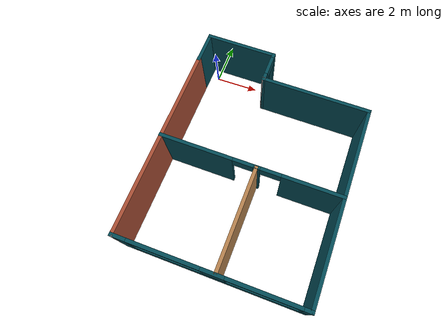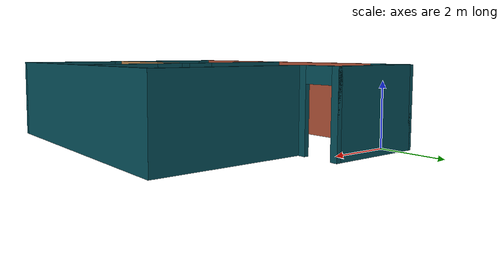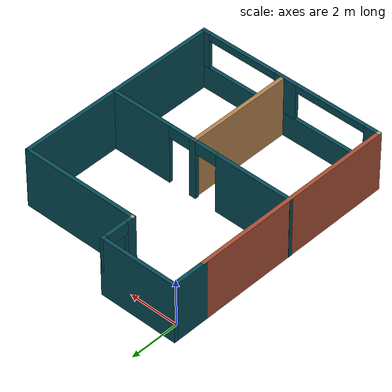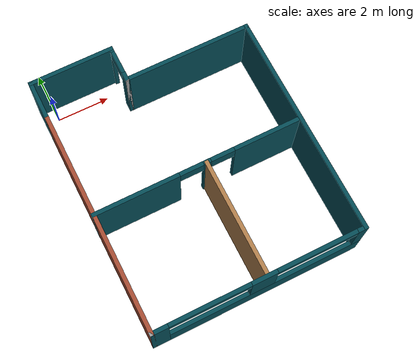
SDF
<?xml version='1.0'?>
<sdf version='1.6'>
  <model name='mybuilding'>
    <pose frame=''>3.46376 -4.3305 0 0 -0 0</pose>
    <link name='Wall_101'>
      <collision name='Wall_101_Collision'>
        <geometry>
          <box>
            <size>8.57063 0.15 2.5</size>
          </box>
        </geometry>
        <pose frame=''>0 0 1.25 0 -0 0</pose>
      </collision>
      <visual name='Wall_101_Visual'>
        <pose frame=''>0 0 1.25 0 -0 0</pose>
        <geometry>
          <box>
            <size>8.57063 0.15 2.5</size>
          </box>
        </geometry>
        <material>
          <script>
            <uri>file://media/materials/scripts/gazebo.material</uri>
            <name>Gazebo/Grey</name>
          </script>
          <ambient>0.0156863 0.294118 0.337255 1</ambient>
        </material>
        <meta>
          <layer>0</layer>
        </meta>
      </visual>
      <pose frame=''>3.92923 -0.675 0 0 0 -1.5708</pose>
    </link>
    <link name='Wall_105'>
      <collision name='Wall_105_Collision'>
        <geometry>
          <box>
            <size>8.571 0.15 2.5</size>
          </box>
        </geometry>
        <pose frame=''>0 0 1.25 0 -0 0</pose>
      </collision>
      <visual name='Wall_105_Visual'>
        <pose frame=''>0 0 1.25 0 -0 0</pose>
        <geometry>
          <box>
            <size>8.571 0.15 2.5</size>
          </box>
        </geometry>
        <material>
          <script>
            <uri>file://media/materials/scripts/gazebo.material</uri>
            <name>Gazebo/Bricks</name>
          </script>
          <ambient>0.0156863 0.294118 0.337255 1</ambient>
        </material>
        <meta>
          <layer>0</layer>
        </meta>
      </visual>
      <pose frame=''>-3.92076 -0.675 0 0 0 -1.5708</pose>
    </link>
    <link name='Wall_106'>
      <collision name='Wall_106_Collision'>
        <geometry>
          <box>
            <size>0.15 0.15 2.5</size>
          </box>
        </geometry>
        <pose frame=''>0 0 1.25 0 -0 0</pose>
      </collision>
      <visual name='Wall_106_Visual'>
        <pose frame=''>0 0 1.25 0 -0 0</pose>
        <geometry>
          <box>
            <size>0.15 0.15 2.5</size>
          </box>
        </geometry>
        <material>
          <script>
            <uri>file://media/materials/scripts/gazebo.material</uri>
            <name>Gazebo/Grey</name>
          </script>
          <ambient>1 1 1 1</ambient>
        </material>
        <meta>
          <layer>0</layer>
        </meta>
      </visual>
      <pose frame=''>-3.92076 -4.8855 0 0 -0 0</pose>
    </link>
    <link name='Wall_108'>
      <pose frame=''>0.004235 -4.8855 0 0 -0 0</pose>
      <visual name='Wall_108_Visual_0'>
        <pose frame=''>-3.66692 0 1.25 0 -0 0</pose>
        <geometry>
          <box>
            <size>0.666158 0.15 2.5</size>
          </box>
        </geometry>
        <material>
          <script>
            <uri>file://media/materials/scripts/gazebo.material</uri>
            <name>Gazebo/Grey</name>
          </script>
          <ambient>0.0156863 0.294118 0.337255 1</ambient>
        </material>
        <meta>
          <layer>0</layer>
        </meta>
      </visual>
      <collision name='Wall_108_Collision_0'>
        <geometry>
          <box>
            <size>0.666158 0.15 2.5</size>
          </box>
        </geometry>
        <pose frame=''>-3.66692 0 1.25 0 -0 0</pose>
      </collision>
      <visual name='Wall_108_Visual_1'>
        <pose frame=''>0.333079 0 0.5 0 -0 0</pose>
        <geometry>
          <box>
            <size>7.33384 0.15 1</size>
          </box>
        </geometry>
        <material>
          <script>
            <uri>file://media/materials/scripts/gazebo.material</uri>
            <name>Gazebo/Grey</name>
          </script>
          <ambient>0.0156863 0.294118 0.337255 1</ambient>
        </material>
        <meta>
          <layer>0</layer>
        </meta>
      </visual>
      <collision name='Wall_108_Collision_1'>
        <geometry>
          <box>
            <size>7.33384 0.15 1</size>
          </box>
        </geometry>
        <pose frame=''>0.333079 0 0.5 0 -0 0</pose>
      </collision>
      <visual name='Wall_108_Visual_2'>
        <pose frame=''>0.14479 0 1.75 0 -0 0</pose>
        <geometry>
          <box>
            <size>0.957263 0.15 1.5</size>
          </box>
        </geometry>
        <material>
          <script>
            <uri>file://media/materials/scripts/gazebo.material</uri>
            <name>Gazebo/Grey</name>
          </script>
          <ambient>0.0156863 0.294118 0.337255 1</ambient>
        </material>
        <meta>
          <layer>0</layer>
        </meta>
      </visual>
      <collision name='Wall_108_Collision_2'>
        <geometry>
          <box>
            <size>0.957263 0.15 1.5</size>
          </box>
        </geometry>
        <pose frame=''>0.14479 0 1.75 0 -0 0</pose>
      </collision>
      <visual name='Wall_108_Visual_3'>
        <pose frame=''>3.81171 0 1.75 0 -0 0</pose>
        <geometry>
          <box>
            <size>0.376579 0.15 1.5</size>
          </box>
        </geometry>
        <material>
          <script>
            <uri>file://media/materials/scripts/gazebo.material</uri>
            <name>Gazebo/Grey</name>
          </script>
          <ambient>0.0156863 0.294118 0.337255 1</ambient>
        </material>
        <meta>
          <layer>0</layer>
        </meta>
      </visual>
      <collision name='Wall_108_Collision_3'>
        <geometry>
          <box>
            <size>0.376579 0.15 1.5</size>
          </box>
        </geometry>
        <pose frame=''>3.81171 0 1.75 0 -0 0</pose>
      </collision>
      <visual name='Wall_108_Visual_4'>
        <pose frame=''>-1.83384 0 2.35 0 -0 0</pose>
        <geometry>
          <box>
            <size>3 0.15 0.3</size>
          </box>
        </geometry>
        <material>
          <script>
            <uri>file://media/materials/scripts/gazebo.material</uri>
            <name>Gazebo/Grey</name>
          </script>
          <ambient>0.0156863 0.294118 0.337255 1</ambient>
        </material>
        <meta>
          <layer>0</layer>
        </meta>
      </visual>
      <collision name='Wall_108_Collision_4'>
        <geometry>
          <box>
            <size>3 0.15 0.3</size>
          </box>
        </geometry>
        <pose frame=''>-1.83384 0 2.35 0 -0 0</pose>
      </collision>
      <visual name='Wall_108_Visual_5'>
        <pose frame=''>2.12342 0 2.35 0 -0 0</pose>
        <geometry>
          <box>
            <size>3 0.15 0.3</size>
          </box>
        </geometry>
        <material>
          <script>
            <uri>file://media/materials/scripts/gazebo.material</uri>
            <name>Gazebo/Grey</name>
          </script>
          <ambient>0.0156863 0.294118 0.337255 1</ambient>
        </material>
        <meta>
          <layer>0</layer>
        </meta>
      </visual>
      <collision name='Wall_108_Collision_5'>
        <geometry>
          <box>
            <size>3 0.15 0.3</size>
          </box>
        </geometry>
        <pose frame=''>2.12342 0 2.35 0 -0 0</pose>
      </collision>
    </link>
    <link name='Wall_110'>
      <collision name='Wall_110_Collision'>
        <geometry>
          <box>
            <size>1.5 0.15 2.5</size>
          </box>
        </geometry>
        <pose frame=''>0 0 1.25 0 -0 0</pose>
      </collision>
      <visual name='Wall_110_Visual'>
        <pose frame=''>0 0 1.25 0 -0 0</pose>
        <geometry>
          <box>
            <size>1.5 0.15 2.5</size>
          </box>
        </geometry>
        <material>
          <script>
            <uri>file://media/materials/scripts/gazebo.material</uri>
            <name>Gazebo/Grey</name>
          </script>
          <ambient>0.0156863 0.294118 0.337255 1</ambient>
        </material>
        <meta>
          <layer>0</layer>
        </meta>
      </visual>
      <pose frame=''>-3.92076 4.2105 0 0 -0 1.5708</pose>
    </link>
    <link name='Wall_111'>
      <collision name='Wall_111_Collision'>
        <geometry>
          <box>
            <size>3.25 0.15 2.5</size>
          </box>
        </geometry>
        <pose frame=''>0 0 1.25 0 -0 0</pose>
      </collision>
      <visual name='Wall_111_Visual'>
        <pose frame=''>0 0 1.25 0 -0 0</pose>
        <geometry>
          <box>
            <size>3.25 0.15 2.5</size>
          </box>
        </geometry>
        <material>
          <script>
            <uri>file://media/materials/scripts/gazebo.material</uri>
            <name>Gazebo/Grey</name>
          </script>
          <ambient>0.0156863 0.294118 0.337255 1</ambient>
        </material>
        <meta>
          <layer>0</layer>
        </meta>
      </visual>
      <pose frame=''>-2.37077 4.8855 0 0 -0 0</pose>
    </link>
    <link name='Wall_112'>
      <pose frame=''>-0.820765 4.2105 0 0 0 -1.5708</pose>
      <visual name='Wall_112_Visual_0'>
        <pose frame=''>-0.638857 0 1.25 0 -0 0</pose>
        <geometry>
          <box>
            <size>0.222287 0.15 2.5</size>
          </box>
        </geometry>
        <material>
          <script>
            <uri>file://media/materials/scripts/gazebo.material</uri>
            <name>Gazebo/Grey</name>
          </script>
          <ambient>0.0156863 0.294118 0.337255 1</ambient>
        </material>
        <meta>
          <layer>0</layer>
        </meta>
      </visual>
      <collision name='Wall_112_Collision_0'>
        <geometry>
          <box>
            <size>0.222287 0.15 2.5</size>
          </box>
        </geometry>
        <pose frame=''>-0.638857 0 1.25 0 -0 0</pose>
      </collision>
      <visual name='Wall_112_Visual_1'>
        <pose frame=''>0.561143 0 1.25 0 -0 0</pose>
        <geometry>
          <box>
            <size>0.377713 0.15 2.5</size>
          </box>
        </geometry>
        <material>
          <script>
            <uri>file://media/materials/scripts/gazebo.material</uri>
            <name>Gazebo/Grey</name>
          </script>
          <ambient>0.0156863 0.294118 0.337255 1</ambient>
        </material>
        <meta>
          <layer>0</layer>
        </meta>
      </visual>
      <collision name='Wall_112_Collision_1'>
        <geometry>
          <box>
            <size>0.377713 0.15 2.5</size>
          </box>
        </geometry>
        <pose frame=''>0.561143 0 1.25 0 -0 0</pose>
      </collision>
      <visual name='Wall_112_Visual_2'>
        <pose frame=''>-0.077713 0 2.25 0 -0 0</pose>
        <geometry>
          <box>
            <size>0.9 0.15 0.5</size>
          </box>
        </geometry>
        <material>
          <script>
            <uri>file://media/materials/scripts/gazebo.material</uri>
            <name>Gazebo/Grey</name>
          </script>
          <ambient>0.0156863 0.294118 0.337255 1</ambient>
        </material>
        <meta>
          <layer>0</layer>
        </meta>
      </visual>
      <collision name='Wall_112_Collision_2'>
        <geometry>
          <box>
            <size>0.9 0.15 0.5</size>
          </box>
        </geometry>
        <pose frame=''>-0.077713 0 2.25 0 -0 0</pose>
      </collision>
    </link>
    <link name='Wall_113'>
      <collision name='Wall_113_Collision'>
        <geometry>
          <box>
            <size>0.15 0.15 2.5</size>
          </box>
        </geometry>
        <pose frame=''>0 0 1.25 0 -0 0</pose>
      </collision>
      <visual name='Wall_113_Visual'>
        <pose frame=''>0 0 1.25 0 -0 0</pose>
        <geometry>
          <box>
            <size>0.15 0.15 2.5</size>
          </box>
        </geometry>
        <material>
          <script>
            <uri>file://media/materials/scripts/gazebo.material</uri>
            <name>Gazebo/Grey</name>
          </script>
          <ambient>1 1 1 1</ambient>
        </material>
        <meta>
          <layer>0</layer>
        </meta>
      </visual>
      <pose frame=''>-0.820765 3.5355 0 0 -0 0</pose>
    </link>
    <link name='Wall_115'>
      <collision name='Wall_115_Collision'>
        <geometry>
          <box>
            <size>4.9 0.15 2.5</size>
          </box>
        </geometry>
        <pose frame=''>0 0 1.25 0 -0 0</pose>
      </collision>
      <visual name='Wall_115_Visual'>
        <pose frame=''>0 0 1.25 0 -0 0</pose>
        <geometry>
          <box>
            <size>4.9 0.15 2.5</size>
          </box>
        </geometry>
        <material>
          <script>
            <uri>file://media/materials/scripts/gazebo.material</uri>
            <name>Gazebo/Grey</name>
          </script>
          <ambient>0.0156863 0.294118 0.337255 1</ambient>
        </material>
        <meta>
          <layer>0</layer>
        </meta>
      </visual>
      <pose frame=''>1.55424 3.5355 0 0 -0 0</pose>
    </link>
    <link name='Wall_123'>
      <pose frame=''>-0.004235 -0.491387 0 0 -0 0</pose>
      <visual name='Wall_123_Visual_0'>
        <pose frame=''>-2.3719 0 1.25 0 -0 0</pose>
        <geometry>
          <box>
            <size>3.25619 0.15 2.5</size>
          </box>
        </geometry>
        <material>
          <script>
            <uri>file://media/materials/scripts/gazebo.material</uri>
            <name>Gazebo/Grey</name>
          </script>
          <ambient>0.0156863 0.294118 0.337255 1</ambient>
        </material>
        <meta>
          <layer>0</layer>
        </meta>
      </visual>
      <collision name='Wall_123_Collision_0'>
        <geometry>
          <box>
            <size>3.25619 0.15 2.5</size>
          </box>
        </geometry>
        <pose frame=''>-2.3719 0 1.25 0 -0 0</pose>
      </collision>
      <visual name='Wall_123_Visual_1'>
        <pose frame=''>0.297909 0 1.25 0 -0 0</pose>
        <geometry>
          <box>
            <size>0.283432 0.15 2.5</size>
          </box>
        </geometry>
        <material>
          <script>
            <uri>file://media/materials/scripts/gazebo.material</uri>
            <name>Gazebo/Grey</name>
          </script>
          <ambient>0.0156863 0.294118 0.337255 1</ambient>
        </material>
        <meta>
          <layer>0</layer>
        </meta>
      </visual>
      <collision name='Wall_123_Collision_1'>
        <geometry>
          <box>
            <size>0.283432 0.15 2.5</size>
          </box>
        </geometry>
        <pose frame=''>0.297909 0 1.25 0 -0 0</pose>
      </collision>
      <visual name='Wall_123_Visual_2'>
        <pose frame=''>2.66981 0 1.25 0 -0 0</pose>
        <geometry>
          <box>
            <size>2.66038 0.15 2.5</size>
          </box>
        </geometry>
        <material>
          <script>
            <uri>file://media/materials/scripts/gazebo.material</uri>
            <name>Gazebo/Grey</name>
          </script>
          <ambient>0.0156863 0.294118 0.337255 1</ambient>
        </material>
        <meta>
          <layer>0</layer>
        </meta>
      </visual>
      <collision name='Wall_123_Collision_2'>
        <geometry>
          <box>
            <size>2.66038 0.15 2.5</size>
          </box>
        </geometry>
        <pose frame=''>2.66981 0 1.25 0 -0 0</pose>
      </collision>
      <visual name='Wall_123_Visual_3'>
        <pose frame=''>-0.293807 0 2.25 0 -0 0</pose>
        <geometry>
          <box>
            <size>0.9 0.15 0.5</size>
          </box>
        </geometry>
        <material>
          <script>
            <uri>file://media/materials/scripts/gazebo.material</uri>
            <name>Gazebo/Grey</name>
          </script>
          <ambient>0.0156863 0.294118 0.337255 1</ambient>
        </material>
        <meta>
          <layer>0</layer>
        </meta>
      </visual>
      <collision name='Wall_123_Collision_3'>
        <geometry>
          <box>
            <size>0.9 0.15 0.5</size>
          </box>
        </geometry>
        <pose frame=''>-0.293807 0 2.25 0 -0 0</pose>
      </collision>
      <visual name='Wall_123_Visual_4'>
        <pose frame=''>0.889625 0 2.25 0 -0 0</pose>
        <geometry>
          <box>
            <size>0.9 0.15 0.5</size>
          </box>
        </geometry>
        <material>
          <script>
            <uri>file://media/materials/scripts/gazebo.material</uri>
            <name>Gazebo/Grey</name>
          </script>
          <ambient>0.0156863 0.294118 0.337255 1</ambient>
        </material>
        <meta>
          <layer>0</layer>
        </meta>
      </visual>
      <collision name='Wall_123_Collision_4'>
        <geometry>
          <box>
            <size>0.9 0.15 0.5</size>
          </box>
        </geometry>
        <pose frame=''>0.889625 0 2.25 0 -0 0</pose>
      </collision>
    </link>
    <link name='Wall_125'>
      <collision name='Wall_125_Collision'>
        <geometry>
          <box>
            <size>4.5 0.15 2.5</size>
          </box>
        </geometry>
        <pose frame=''>0 0 1.25 0 -0 0</pose>
      </collision>
      <visual name='Wall_125_Visual'>
        <pose frame=''>0 0 1.25 0 -0 0</pose>
        <geometry>
          <box>
            <size>4.5 0.15 2.5</size>
          </box>
        </geometry>
        <material>
          <script>
            <uri>file://media/materials/scripts/gazebo.material</uri>
            <name>Gazebo/Wood</name>
          </script>
          <ambient>0.0156863 0.294118 0.337255 1</ambient>
        </material>
        <meta>
          <layer>0</layer>
        </meta>
      </visual>
      <pose frame=''>0.275335 -2.69807 0 0 0 -1.5708</pose>
    </link>
    <static>1</static>
  </model>
</sdf>
